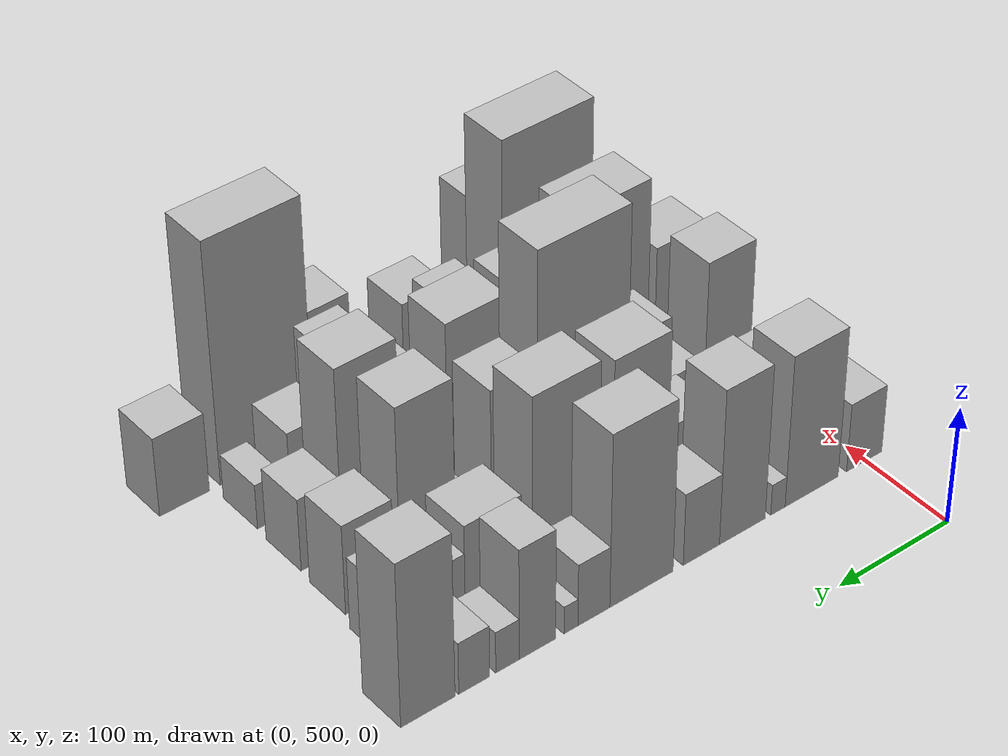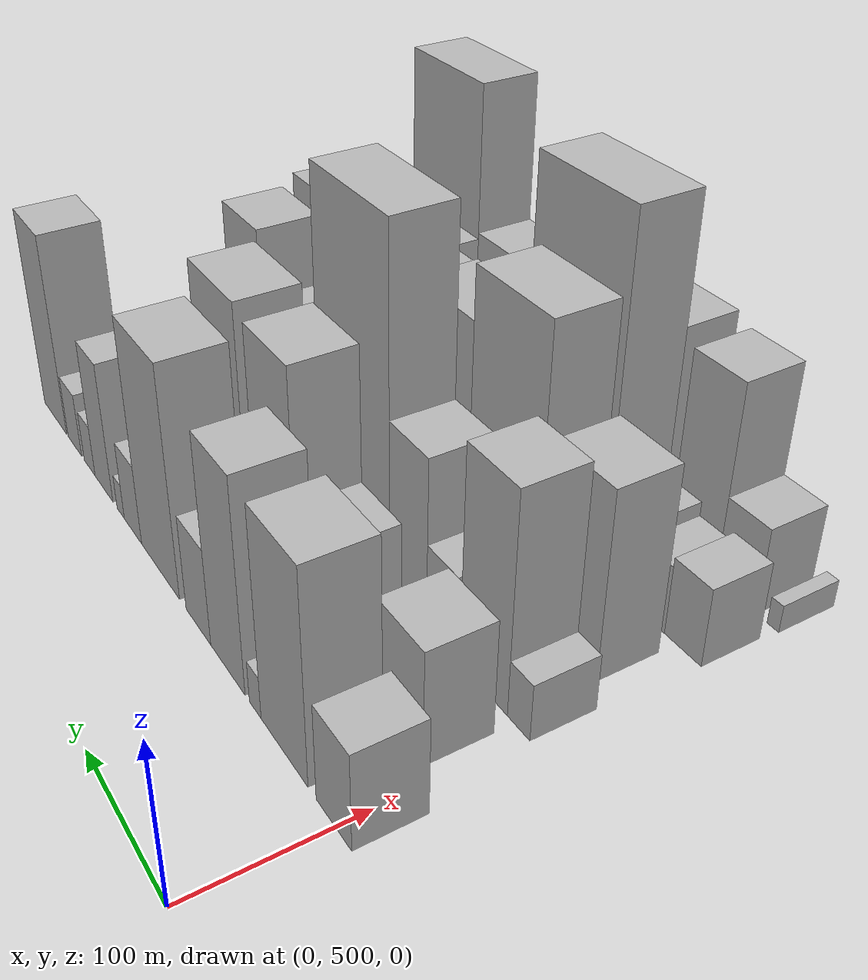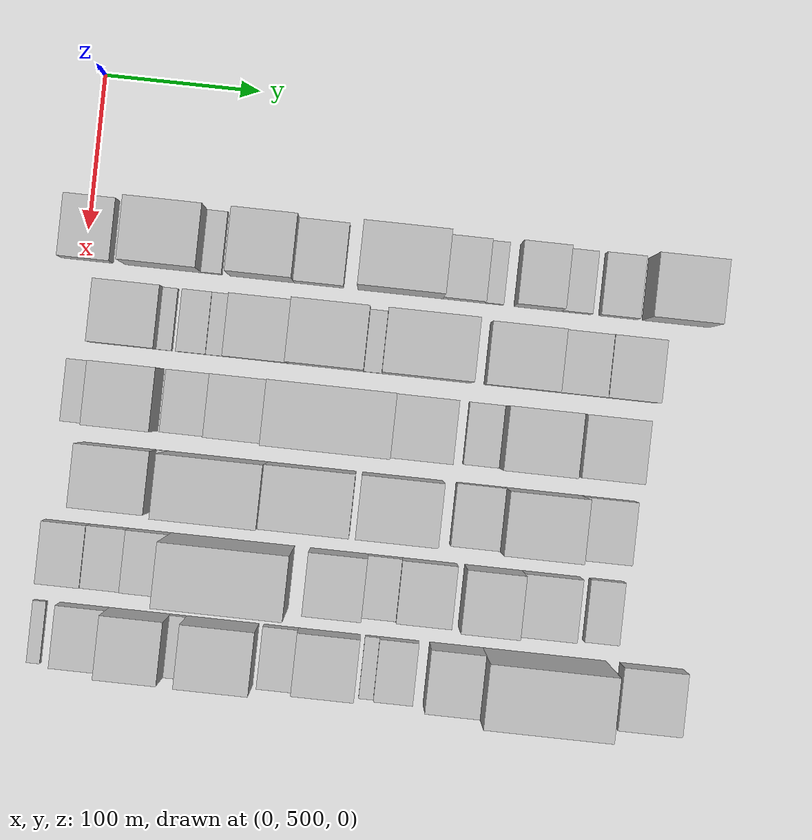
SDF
<sdf version="1.6">
 <world name="default">
  <model name="building_42">
   <static>1</static>
   <pose>100.0000 501.5508 0 0.000000 0.000000 0.000000</pose>
   <link name="link">
    <pose>0 0 30.00 0 0 0</pose>
    <collision name="collision"><geometry><box><size>40.0000 33.3344 60.0000</size></box></geometry></collision>
    <visual name="visual">
     <cast_shadows>0</cast_shadows>
     <geometry><box><size>40.0000 33.3344 60.0000</size></box></geometry>
     <material>
      <script>
       <uri>model://HANNAS_wall/materials/scripts</uri>
       <uri>model://HANNAS_wall/materials/textures</uri>
       <name>vrc/HANNAS_wall</name>
      </script>
     </material>
    </visual>
   </link>
  </model>
  <model name="building_43">
   <static>1</static>
   <pose>100.0000 550.8239 0 0.000000 0.000000 0.000000</pose>
   <link name="link">
    <pose>0 0 66.00 0 0 0</pose>
    <collision name="collision"><geometry><box><size>40.0000 49.2117 132.0000</size></box></geometry></collision>
    <visual name="visual">
     <cast_shadows>0</cast_shadows>
     <geometry><box><size>40.0000 49.2117 132.0000</size></box></geometry>
     <material>
      <script>
       <uri>model://HANNAS_wall/materials/scripts</uri>
       <uri>model://HANNAS_wall/materials/textures</uri>
       <name>vrc/HANNAS_wall</name>
      </script>
     </material>
    </visual>
   </link>
  </model>
  <model name="building_44">
   <static>1</static>
   <pose>100.0000 582.0222 0 0.000000 0.000000 0.000000</pose>
   <link name="link">
    <pose>0 0 13.50 0 0 0</pose>
    <collision name="collision"><geometry><box><size>40.0000 13.1849 27.0000</size></box></geometry></collision>
    <visual name="visual">
     <cast_shadows>0</cast_shadows>
     <geometry><box><size>40.0000 13.1849 27.0000</size></box></geometry>
     <material>
      <script>
       <uri>model://HANNAS_wall/materials/scripts</uri>
       <uri>model://HANNAS_wall/materials/textures</uri>
       <name>vrc/HANNAS_wall</name>
      </script>
     </material>
    </visual>
   </link>
  </model>
  <model name="building_45">
   <static>1</static>
   <pose>100.0000 614.3200 0 0.000000 0.000000 0.000000</pose>
   <link name="link">
    <pose>0 0 67.50 0 0 0</pose>
    <collision name="collision"><geometry><box><size>40.0000 41.4108 135.0000</size></box></geometry></collision>
    <visual name="visual">
     <cast_shadows>0</cast_shadows>
     <geometry><box><size>40.0000 41.4108 135.0000</size></box></geometry>
     <material>
      <script>
       <uri>model://HANNAS_wall/materials/scripts</uri>
       <uri>model://HANNAS_wall/materials/textures</uri>
       <name>vrc/HANNAS_wall</name>
      </script>
     </material>
    </visual>
   </link>
  </model>
  <model name="building_46">
   <static>1</static>
   <pose>100.0000 651.0902 0 0.000000 0.000000 0.000000</pose>
   <link name="link">
    <pose>0 0 31.50 0 0 0</pose>
    <collision name="collision"><geometry><box><size>40.0000 32.1295 63.0000</size></box></geometry></collision>
    <visual name="visual">
     <cast_shadows>0</cast_shadows>
     <geometry><box><size>40.0000 32.1295 63.0000</size></box></geometry>
     <material>
      <script>
       <uri>model://HANNAS_wall/materials/scripts</uri>
       <uri>model://HANNAS_wall/materials/textures</uri>
       <name>vrc/HANNAS_wall</name>
      </script>
     </material>
    </visual>
   </link>
  </model>
  <model name="building_47">
   <static>1</static>
   <pose>100.0000 703.5954 0 0.000000 0.000000 0.000000</pose>
   <link name="link">
    <pose>0 0 75.00 0 0 0</pose>
    <collision name="collision"><geometry><box><size>40.0000 54.8809 150.0000</size></box></geometry></collision>
    <visual name="visual">
     <cast_shadows>0</cast_shadows>
     <geometry><box><size>40.0000 54.8809 150.0000</size></box></geometry>
     <material>
      <script>
       <uri>model://HANNAS_wall/materials/scripts</uri>
       <uri>model://HANNAS_wall/materials/textures</uri>
       <name>vrc/HANNAS_wall</name>
      </script>
     </material>
    </visual>
   </link>
  </model>
  <model name="building_48">
   <static>1</static>
   <pose>100.0000 744.6136 0 0.000000 0.000000 0.000000</pose>
   <link name="link">
    <pose>0 0 27.00 0 0 0</pose>
    <collision name="collision"><geometry><box><size>40.0000 27.1555 54.0000</size></box></geometry></collision>
    <visual name="visual">
     <cast_shadows>0</cast_shadows>
     <geometry><box><size>40.0000 27.1555 54.0000</size></box></geometry>
     <material>
      <script>
       <uri>model://HANNAS_wall/materials/scripts</uri>
       <uri>model://HANNAS_wall/materials/textures</uri>
       <name>vrc/HANNAS_wall</name>
      </script>
     </material>
    </visual>
   </link>
  </model>
  <model name="building_49">
   <static>1</static>
   <pose>100.0000 764.0607 0 0.000000 0.000000 0.000000</pose>
   <link name="link">
    <pose>0 0 12.00 0 0 0</pose>
    <collision name="collision"><geometry><box><size>40.0000 11.7385 24.0000</size></box></geometry></collision>
    <visual name="visual">
     <cast_shadows>0</cast_shadows>
     <geometry><box><size>40.0000 11.7385 24.0000</size></box></geometry>
     <material>
      <script>
       <uri>model://HANNAS_wall/materials/scripts</uri>
       <uri>model://HANNAS_wall/materials/textures</uri>
       <name>vrc/HANNAS_wall</name>
      </script>
     </material>
    </visual>
   </link>
  </model>
  <model name="building_50">
   <static>1</static>
   <pose>100.0000 792.1015 0 0.000000 0.000000 0.000000</pose>
   <link name="link">
    <pose>0 0 48.00 0 0 0</pose>
    <collision name="collision"><geometry><box><size>40.0000 30.3432 96.0000</size></box></geometry></collision>
    <visual name="visual">
     <cast_shadows>0</cast_shadows>
     <geometry><box><size>40.0000 30.3432 96.0000</size></box></geometry>
     <material>
      <script>
       <uri>model://HANNAS_wall/materials/scripts</uri>
       <uri>model://HANNAS_wall/materials/textures</uri>
       <name>vrc/HANNAS_wall</name>
      </script>
     </material>
    </visual>
   </link>
  </model>
  <model name="building_51">
   <static>1</static>
   <pose>100.0000 816.9492 0 0.000000 0.000000 0.000000</pose>
   <link name="link">
    <pose>0 0 18.00 0 0 0</pose>
    <collision name="collision"><geometry><box><size>40.0000 19.3522 36.0000</size></box></geometry></collision>
    <visual name="visual">
     <cast_shadows>0</cast_shadows>
     <geometry><box><size>40.0000 19.3522 36.0000</size></box></geometry>
     <material>
      <script>
       <uri>model://HANNAS_wall/materials/scripts</uri>
       <uri>model://HANNAS_wall/materials/textures</uri>
       <name>vrc/HANNAS_wall</name>
      </script>
     </material>
    </visual>
   </link>
  </model>
  <model name="building_52">
   <static>1</static>
   <pose>100.0000 844.1916 0 0.000000 0.000000 0.000000</pose>
   <link name="link">
    <pose>0 0 22.50 0 0 0</pose>
    <collision name="collision"><geometry><box><size>40.0000 25.1327 45.0000</size></box></geometry></collision>
    <visual name="visual">
     <cast_shadows>0</cast_shadows>
     <geometry><box><size>40.0000 25.1327 45.0000</size></box></geometry>
     <material>
      <script>
       <uri>model://HANNAS_wall/materials/scripts</uri>
       <uri>model://HANNAS_wall/materials/textures</uri>
       <name>vrc/HANNAS_wall</name>
      </script>
     </material>
    </visual>
   </link>
  </model>
  <model name="building_53">
   <static>1</static>
   <pose>100.0000 881.5079 0 0.000000 0.000000 0.000000</pose>
   <link name="link">
    <pose>0 0 70.50 0 0 0</pose>
    <collision name="collision"><geometry><box><size>40.0000 43.4998 141.0000</size></box></geometry></collision>
    <visual name="visual">
     <cast_shadows>0</cast_shadows>
     <geometry><box><size>40.0000 43.4998 141.0000</size></box></geometry>
     <material>
      <script>
       <uri>model://HANNAS_wall/materials/scripts</uri>
       <uri>model://HANNAS_wall/materials/textures</uri>
       <name>vrc/HANNAS_wall</name>
      </script>
     </material>
    </visual>
   </link>
  </model>
  <model name="building_94">
   <static>1</static>
   <pose>152.0000 530.9502 0 0.000000 0.000000 0.000000</pose>
   <link name="link">
    <pose>0 0 36.00 0 0 0</pose>
    <collision name="collision"><geometry><box><size>40.0000 42.6453 72.0000</size></box></geometry></collision>
    <visual name="visual">
     <cast_shadows>0</cast_shadows>
     <geometry><box><size>40.0000 42.6453 72.0000</size></box></geometry>
     <material>
      <script>
       <uri>model://HANNAS_wall/materials/scripts</uri>
       <uri>model://HANNAS_wall/materials/textures</uri>
       <name>vrc/HANNAS_wall</name>
      </script>
     </material>
    </visual>
   </link>
  </model>
  <model name="building_95">
   <static>1</static>
   <pose>152.0000 557.1563 0 0.000000 0.000000 0.000000</pose>
   <link name="link">
    <pose>0 0 10.50 0 0 0</pose>
    <collision name="collision"><geometry><box><size>40.0000 9.7668 21.0000</size></box></geometry></collision>
    <visual name="visual">
     <cast_shadows>0</cast_shadows>
     <geometry><box><size>40.0000 9.7668 21.0000</size></box></geometry>
     <material>
      <script>
       <uri>model://HANNAS_wall/materials/scripts</uri>
       <uri>model://HANNAS_wall/materials/textures</uri>
       <name>vrc/HANNAS_wall</name>
      </script>
     </material>
    </visual>
   </link>
  </model>
  <model name="building_96">
   <static>1</static>
   <pose>152.0000 574.5912 0 0.000000 0.000000 0.000000</pose>
   <link name="link">
    <pose>0 0 16.50 0 0 0</pose>
    <collision name="collision"><geometry><box><size>40.0000 19.1031 33.0000</size></box></geometry></collision>
    <visual name="visual">
     <cast_shadows>0</cast_shadows>
     <geometry><box><size>40.0000 19.1031 33.0000</size></box></geometry>
     <material>
      <script>
       <uri>model://HANNAS_wall/materials/scripts</uri>
       <uri>model://HANNAS_wall/materials/textures</uri>
       <name>vrc/HANNAS_wall</name>
      </script>
     </material>
    </visual>
   </link>
  </model>
  <model name="building_97">
   <static>1</static>
   <pose>152.0000 589.9394 0 0.000000 0.000000 0.000000</pose>
   <link name="link">
    <pose>0 0 13.50 0 0 0</pose>
    <collision name="collision"><geometry><box><size>40.0000 11.5933 27.0000</size></box></geometry></collision>
    <visual name="visual">
     <cast_shadows>0</cast_shadows>
     <geometry><box><size>40.0000 11.5933 27.0000</size></box></geometry>
     <material>
      <script>
       <uri>model://HANNAS_wall/materials/scripts</uri>
       <uri>model://HANNAS_wall/materials/textures</uri>
       <name>vrc/HANNAS_wall</name>
      </script>
     </material>
    </visual>
   </link>
  </model>
  <model name="building_98">
   <static>1</static>
   <pose>152.0000 616.2266 0 0.000000 0.000000 0.000000</pose>
   <link name="link">
    <pose>0 0 34.50 0 0 0</pose>
    <collision name="collision"><geometry><box><size>40.0000 40.9809 69.0000</size></box></geometry></collision>
    <visual name="visual">
     <cast_shadows>0</cast_shadows>
     <geometry><box><size>40.0000 40.9809 69.0000</size></box></geometry>
     <material>
      <script>
       <uri>model://HANNAS_wall/materials/scripts</uri>
       <uri>model://HANNAS_wall/materials/textures</uri>
       <name>vrc/HANNAS_wall</name>
      </script>
     </material>
    </visual>
   </link>
  </model>
  <model name="building_99">
   <static>1</static>
   <pose>152.0000 661.1758 0 0.000000 0.000000 0.000000</pose>
   <link name="link">
    <pose>0 0 76.50 0 0 0</pose>
    <collision name="collision"><geometry><box><size>40.0000 48.9176 153.0000</size></box></geometry></collision>
    <visual name="visual">
     <cast_shadows>0</cast_shadows>
     <geometry><box><size>40.0000 48.9176 153.0000</size></box></geometry>
     <material>
      <script>
       <uri>model://HANNAS_wall/materials/scripts</uri>
       <uri>model://HANNAS_wall/materials/textures</uri>
       <name>vrc/HANNAS_wall</name>
      </script>
     </material>
    </visual>
   </link>
  </model>
  <model name="building_100">
   <static>1</static>
   <pose>152.0000 691.3845 0 0.000000 0.000000 0.000000</pose>
   <link name="link">
    <pose>0 0 13.50 0 0 0</pose>
    <collision name="collision"><geometry><box><size>40.0000 11.4999 27.0000</size></box></geometry></collision>
    <visual name="visual">
     <cast_shadows>0</cast_shadows>
     <geometry><box><size>40.0000 11.4999 27.0000</size></box></geometry>
     <material>
      <script>
       <uri>model://HANNAS_wall/materials/scripts</uri>
       <uri>model://HANNAS_wall/materials/textures</uri>
       <name>vrc/HANNAS_wall</name>
      </script>
     </material>
    </visual>
   </link>
  </model>
  <model name="building_101">
   <static>1</static>
   <pose>152.0000 725.6495 0 0.000000 0.000000 0.000000</pose>
   <link name="link">
    <pose>0 0 79.50 0 0 0</pose>
    <collision name="collision"><geometry><box><size>40.0000 57.0301 159.0000</size></box></geometry></collision>
    <visual name="visual">
     <cast_shadows>0</cast_shadows>
     <geometry><box><size>40.0000 57.0301 159.0000</size></box></geometry>
     <material>
      <script>
       <uri>model://HANNAS_wall/materials/scripts</uri>
       <uri>model://HANNAS_wall/materials/textures</uri>
       <name>vrc/HANNAS_wall</name>
      </script>
     </material>
    </visual>
   </link>
  </model>
  <model name="building_102">
   <static>1</static>
   <pose>152.0000 786.7947 0 0.000000 0.000000 0.000000</pose>
   <link name="link">
    <pose>0 0 40.50 0 0 0</pose>
    <collision name="collision"><geometry><box><size>40.0000 47.2603 81.0000</size></box></geometry></collision>
    <visual name="visual">
     <cast_shadows>0</cast_shadows>
     <geometry><box><size>40.0000 47.2603 81.0000</size></box></geometry>
     <material>
      <script>
       <uri>model://HANNAS_wall/materials/scripts</uri>
       <uri>model://HANNAS_wall/materials/textures</uri>
       <name>vrc/HANNAS_wall</name>
      </script>
     </material>
    </visual>
   </link>
  </model>
  <model name="building_103">
   <static>1</static>
   <pose>152.0000 825.8160 0 0.000000 0.000000 0.000000</pose>
   <link name="link">
    <pose>0 0 28.50 0 0 0</pose>
    <collision name="collision"><geometry><box><size>40.0000 30.7824 57.0000</size></box></geometry></collision>
    <visual name="visual">
     <cast_shadows>0</cast_shadows>
     <geometry><box><size>40.0000 30.7824 57.0000</size></box></geometry>
     <material>
      <script>
       <uri>model://HANNAS_wall/materials/scripts</uri>
       <uri>model://HANNAS_wall/materials/textures</uri>
       <name>vrc/HANNAS_wall</name>
      </script>
     </material>
    </visual>
   </link>
  </model>
  <model name="building_104">
   <static>1</static>
   <pose>152.0000 857.9769 0 0.000000 0.000000 0.000000</pose>
   <link name="link">
    <pose>0 0 31.50 0 0 0</pose>
    <collision name="collision"><geometry><box><size>40.0000 33.5394 63.0000</size></box></geometry></collision>
    <visual name="visual">
     <cast_shadows>0</cast_shadows>
     <geometry><box><size>40.0000 33.5394 63.0000</size></box></geometry>
     <material>
      <script>
       <uri>model://HANNAS_wall/materials/scripts</uri>
       <uri>model://HANNAS_wall/materials/textures</uri>
       <name>vrc/HANNAS_wall</name>
      </script>
     </material>
    </visual>
   </link>
  </model>
  <model name="building_148">
   <static>1</static>
   <pose>204.0000 506.1798 0 0.000000 0.000000 0.000000</pose>
   <link name="link">
    <pose>0 0 18.00 0 0 0</pose>
    <collision name="collision"><geometry><box><size>40.0000 18.8143 36.0000</size></box></geometry></collision>
    <visual name="visual">
     <cast_shadows>0</cast_shadows>
     <geometry><box><size>40.0000 18.8143 36.0000</size></box></geometry>
     <material>
      <script>
       <uri>model://HANNAS_wall/materials/scripts</uri>
       <uri>model://HANNAS_wall/materials/textures</uri>
       <name>vrc/HANNAS_wall</name>
      </script>
     </material>
    </visual>
   </link>
  </model>
  <model name="building_149">
   <static>1</static>
   <pose>204.0000 536.8570 0 0.000000 0.000000 0.000000</pose>
   <link name="link">
    <pose>0 0 69.00 0 0 0</pose>
    <collision name="collision"><geometry><box><size>40.0000 42.5401 138.0000</size></box></geometry></collision>
    <visual name="visual">
     <cast_shadows>0</cast_shadows>
     <geometry><box><size>40.0000 42.5401 138.0000</size></box></geometry>
     <material>
      <script>
       <uri>model://HANNAS_wall/materials/scripts</uri>
       <uri>model://HANNAS_wall/materials/textures</uri>
       <name>vrc/HANNAS_wall</name>
      </script>
     </material>
    </visual>
   </link>
  </model>
  <model name="building_150">
   <static>1</static>
   <pose>204.0000 575.7856 0 0.000000 0.000000 0.000000</pose>
   <link name="link">
    <pose>0 0 27.00 0 0 0</pose>
    <collision name="collision"><geometry><box><size>40.0000 29.3170 54.0000</size></box></geometry></collision>
    <visual name="visual">
     <cast_shadows>0</cast_shadows>
     <geometry><box><size>40.0000 29.3170 54.0000</size></box></geometry>
     <material>
      <script>
       <uri>model://HANNAS_wall/materials/scripts</uri>
       <uri>model://HANNAS_wall/materials/textures</uri>
       <name>vrc/HANNAS_wall</name>
      </script>
     </material>
    </visual>
   </link>
  </model>
  <model name="building_151">
   <static>1</static>
   <pose>204.0000 609.4605 0 0.000000 0.000000 0.000000</pose>
   <link name="link">
    <pose>0 0 54.00 0 0 0</pose>
    <collision name="collision"><geometry><box><size>40.0000 38.0329 108.0000</size></box></geometry></collision>
    <visual name="visual">
     <cast_shadows>0</cast_shadows>
     <geometry><box><size>40.0000 38.0329 108.0000</size></box></geometry>
     <material>
      <script>
       <uri>model://HANNAS_wall/materials/scripts</uri>
       <uri>model://HANNAS_wall/materials/textures</uri>
       <name>vrc/HANNAS_wall</name>
      </script>
     </material>
    </visual>
   </link>
  </model>
  <model name="building_152">
   <static>1</static>
   <pose>204.0000 667.9828 0 0.000000 0.000000 0.000000</pose>
   <link name="link">
    <pose>0 0 111.00 0 0 0</pose>
    <collision name="collision"><geometry><box><size>40.0000 79.0117 222.0000</size></box></geometry></collision>
    <visual name="visual">
     <cast_shadows>0</cast_shadows>
     <geometry><box><size>40.0000 79.0117 222.0000</size></box></geometry>
     <material>
      <script>
       <uri>model://HANNAS_wall/materials/scripts</uri>
       <uri>model://HANNAS_wall/materials/textures</uri>
       <name>vrc/HANNAS_wall</name>
      </script>
     </material>
    </visual>
   </link>
  </model>
  <model name="building_153">
   <static>1</static>
   <pose>204.0000 727.2190 0 0.000000 0.000000 0.000000</pose>
   <link name="link">
    <pose>0 0 63.00 0 0 0</pose>
    <collision name="collision"><geometry><box><size>40.0000 39.4608 126.0000</size></box></geometry></collision>
    <visual name="visual">
     <cast_shadows>0</cast_shadows>
     <geometry><box><size>40.0000 39.4608 126.0000</size></box></geometry>
     <material>
      <script>
       <uri>model://HANNAS_wall/materials/scripts</uri>
       <uri>model://HANNAS_wall/materials/textures</uri>
       <name>vrc/HANNAS_wall</name>
      </script>
     </material>
    </visual>
   </link>
  </model>
  <model name="building_154">
   <static>1</static>
   <pose>204.0000 766.3031 0 0.000000 0.000000 0.000000</pose>
   <link name="link">
    <pose>0 0 19.50 0 0 0</pose>
    <collision name="collision"><geometry><box><size>40.0000 22.7074 39.0000</size></box></geometry></collision>
    <visual name="visual">
     <cast_shadows>0</cast_shadows>
     <geometry><box><size>40.0000 22.7074 39.0000</size></box></geometry>
     <material>
      <script>
       <uri>model://HANNAS_wall/materials/scripts</uri>
       <uri>model://HANNAS_wall/materials/textures</uri>
       <name>vrc/HANNAS_wall</name>
      </script>
     </material>
    </visual>
   </link>
  </model>
  <model name="building_155">
   <static>1</static>
   <pose>204.0000 800.8126 0 0.000000 0.000000 0.000000</pose>
   <link name="link">
    <pose>0 0 76.50 0 0 0</pose>
    <collision name="collision"><geometry><box><size>40.0000 46.3116 153.0000</size></box></geometry></collision>
    <visual name="visual">
     <cast_shadows>0</cast_shadows>
     <geometry><box><size>40.0000 46.3116 153.0000</size></box></geometry>
     <material>
      <script>
       <uri>model://HANNAS_wall/materials/scripts</uri>
       <uri>model://HANNAS_wall/materials/textures</uri>
       <name>vrc/HANNAS_wall</name>
      </script>
     </material>
    </visual>
   </link>
  </model>
  <model name="building_156">
   <static>1</static>
   <pose>204.0000 849.0978 0 0.000000 0.000000 0.000000</pose>
   <link name="link">
    <pose>0 0 39.00 0 0 0</pose>
    <collision name="collision"><geometry><box><size>40.0000 40.2588 78.0000</size></box></geometry></collision>
    <visual name="visual">
     <cast_shadows>0</cast_shadows>
     <geometry><box><size>40.0000 40.2588 78.0000</size></box></geometry>
     <material>
      <script>
       <uri>model://HANNAS_wall/materials/scripts</uri>
       <uri>model://HANNAS_wall/materials/textures</uri>
       <name>vrc/HANNAS_wall</name>
      </script>
     </material>
    </visual>
   </link>
  </model>
  <model name="building_200">
   <static>1</static>
   <pose>256.0000 535.4774 0 0.000000 0.000000 0.000000</pose>
   <link name="link">
    <pose>0 0 60.00 0 0 0</pose>
    <collision name="collision"><geometry><box><size>40.0000 47.3640 120.0000</size></box></geometry></collision>
    <visual name="visual">
     <cast_shadows>0</cast_shadows>
     <geometry><box><size>40.0000 47.3640 120.0000</size></box></geometry>
     <material>
      <script>
       <uri>model://HANNAS_wall/materials/scripts</uri>
       <uri>model://HANNAS_wall/materials/textures</uri>
       <name>vrc/HANNAS_wall</name>
      </script>
     </material>
    </visual>
   </link>
  </model>
  <model name="building_201">
   <static>1</static>
   <pose>256.0000 562.5292 0 0.000000 0.000000 0.000000</pose>
   <link name="link">
    <pose>0 0 7.50 0 0 0</pose>
    <collision name="collision"><geometry><box><size>40.0000 6.7397 15.0000</size></box></geometry></collision>
    <visual name="visual">
     <cast_shadows>0</cast_shadows>
     <geometry><box><size>40.0000 6.7397 15.0000</size></box></geometry>
     <material>
      <script>
       <uri>model://HANNAS_wall/materials/scripts</uri>
       <uri>model://HANNAS_wall/materials/textures</uri>
       <name>vrc/HANNAS_wall</name>
      </script>
     </material>
    </visual>
   </link>
  </model>
  <model name="building_202">
   <static>1</static>
   <pose>256.0000 598.5136 0 0.000000 0.000000 0.000000</pose>
   <link name="link">
    <pose>0 0 91.50 0 0 0</pose>
    <collision name="collision"><geometry><box><size>40.0000 65.2290 183.0000</size></box></geometry></collision>
    <visual name="visual">
     <cast_shadows>0</cast_shadows>
     <geometry><box><size>40.0000 65.2290 183.0000</size></box></geometry>
     <material>
      <script>
       <uri>model://HANNAS_wall/materials/scripts</uri>
       <uri>model://HANNAS_wall/materials/textures</uri>
       <name>vrc/HANNAS_wall</name>
      </script>
     </material>
    </visual>
   </link>
  </model>
  <model name="building_203">
   <static>1</static>
   <pose>256.0000 659.4033 0 0.000000 0.000000 0.000000</pose>
   <link name="link">
    <pose>0 0 75.00 0 0 0</pose>
    <collision name="collision"><geometry><box><size>40.0000 56.5505 150.0000</size></box></geometry></collision>
    <visual name="visual">
     <cast_shadows>0</cast_shadows>
     <geometry><box><size>40.0000 56.5505 150.0000</size></box></geometry>
     <material>
      <script>
       <uri>model://HANNAS_wall/materials/scripts</uri>
       <uri>model://HANNAS_wall/materials/textures</uri>
       <name>vrc/HANNAS_wall</name>
      </script>
     </material>
    </visual>
   </link>
  </model>
  <model name="building_204">
   <static>1</static>
   <pose>256.0000 717.4096 0 0.000000 0.000000 0.000000</pose>
   <link name="link">
    <pose>0 0 73.50 0 0 0</pose>
    <collision name="collision"><geometry><box><size>40.0000 51.4620 147.0000</size></box></geometry></collision>
    <visual name="visual">
     <cast_shadows>0</cast_shadows>
     <geometry><box><size>40.0000 51.4620 147.0000</size></box></geometry>
     <material>
      <script>
       <uri>model://HANNAS_wall/materials/scripts</uri>
       <uri>model://HANNAS_wall/materials/textures</uri>
       <name>vrc/HANNAS_wall</name>
      </script>
     </material>
    </visual>
   </link>
  </model>
  <model name="building_205">
   <static>1</static>
   <pose>256.0000 767.7776 0 0.000000 0.000000 0.000000</pose>
   <link name="link">
    <pose>0 0 30.00 0 0 0</pose>
    <collision name="collision"><geometry><box><size>40.0000 31.2741 60.0000</size></box></geometry></collision>
    <visual name="visual">
     <cast_shadows>0</cast_shadows>
     <geometry><box><size>40.0000 31.2741 60.0000</size></box></geometry>
     <material>
      <script>
       <uri>model://HANNAS_wall/materials/scripts</uri>
       <uri>model://HANNAS_wall/materials/textures</uri>
       <name>vrc/HANNAS_wall</name>
      </script>
     </material>
    </visual>
   </link>
  </model>
  <model name="building_206">
   <static>1</static>
   <pose>256.0000 808.2724 0 0.000000 0.000000 0.000000</pose>
   <link name="link">
    <pose>0 0 78.00 0 0 0</pose>
    <collision name="collision"><geometry><box><size>40.0000 49.7154 156.0000</size></box></geometry></collision>
    <visual name="visual">
     <cast_shadows>0</cast_shadows>
     <geometry><box><size>40.0000 49.7154 156.0000</size></box></geometry>
     <material>
      <script>
       <uri>model://HANNAS_wall/materials/scripts</uri>
       <uri>model://HANNAS_wall/materials/textures</uri>
       <name>vrc/HANNAS_wall</name>
      </script>
     </material>
    </visual>
   </link>
  </model>
  <model name="building_207">
   <static>1</static>
   <pose>256.0000 850.2251 0 0.000000 0.000000 0.000000</pose>
   <link name="link">
    <pose>0 0 31.50 0 0 0</pose>
    <collision name="collision"><geometry><box><size>40.0000 34.1899 63.0000</size></box></geometry></collision>
    <visual name="visual">
     <cast_shadows>0</cast_shadows>
     <geometry><box><size>40.0000 34.1899 63.0000</size></box></geometry>
     <material>
      <script>
       <uri>model://HANNAS_wall/materials/scripts</uri>
       <uri>model://HANNAS_wall/materials/textures</uri>
       <name>vrc/HANNAS_wall</name>
      </script>
     </material>
    </visual>
   </link>
  </model>
  <model name="building_249">
   <static>1</static>
   <pose>308.0000 506.9541 0 0.000000 0.000000 0.000000</pose>
   <link name="link">
    <pose>0 0 25.50 0 0 0</pose>
    <collision name="collision"><geometry><box><size>40.0000 28.5028 51.0000</size></box></geometry></collision>
    <visual name="visual">
     <cast_shadows>0</cast_shadows>
     <geometry><box><size>40.0000 28.5028 51.0000</size></box></geometry>
     <material>
      <script>
       <uri>model://HANNAS_wall/materials/scripts</uri>
       <uri>model://HANNAS_wall/materials/textures</uri>
       <name>vrc/HANNAS_wall</name>
      </script>
     </material>
    </visual>
   </link>
  </model>
  <model name="building_250">
   <static>1</static>
   <pose>308.0000 533.8815 0 0.000000 0.000000 0.000000</pose>
   <link name="link">
    <pose>0 0 22.50 0 0 0</pose>
    <collision name="collision"><geometry><box><size>40.0000 25.3519 45.0000</size></box></geometry></collision>
    <visual name="visual">
     <cast_shadows>0</cast_shadows>
     <geometry><box><size>40.0000 25.3519 45.0000</size></box></geometry>
     <material>
      <script>
       <uri>model://HANNAS_wall/materials/scripts</uri>
       <uri>model://HANNAS_wall/materials/textures</uri>
       <name>vrc/HANNAS_wall</name>
      </script>
     </material>
    </visual>
   </link>
  </model>
  <model name="building_251">
   <static>1</static>
   <pose>308.0000 560.2369 0 0.000000 0.000000 0.000000</pose>
   <link name="link">
    <pose>0 0 27.00 0 0 0</pose>
    <collision name="collision"><geometry><box><size>40.0000 27.3587 54.0000</size></box></geometry></collision>
    <visual name="visual">
     <cast_shadows>0</cast_shadows>
     <geometry><box><size>40.0000 27.3587 54.0000</size></box></geometry>
     <material>
      <script>
       <uri>model://HANNAS_wall/materials/scripts</uri>
       <uri>model://HANNAS_wall/materials/textures</uri>
       <name>vrc/HANNAS_wall</name>
      </script>
     </material>
    </visual>
   </link>
  </model>
  <model name="building_252">
   <static>1</static>
   <pose>308.0000 613.7526 0 0.000000 0.000000 0.000000</pose>
   <link name="link">
    <pose>0 0 112.50 0 0 0</pose>
    <collision name="collision"><geometry><box><size>40.0000 79.6727 225.0000</size></box></geometry></collision>
    <visual name="visual">
     <cast_shadows>0</cast_shadows>
     <geometry><box><size>40.0000 79.6727 225.0000</size></box></geometry>
     <material>
      <script>
       <uri>model://HANNAS_wall/materials/scripts</uri>
       <uri>model://HANNAS_wall/materials/textures</uri>
       <name>vrc/HANNAS_wall</name>
      </script>
     </material>
    </visual>
   </link>
  </model>
  <model name="building_253">
   <static>1</static>
   <pose>308.0000 682.1928 0 0.000000 0.000000 0.000000</pose>
   <link name="link">
    <pose>0 0 54.00 0 0 0</pose>
    <collision name="collision"><geometry><box><size>40.0000 37.2078 108.0000</size></box></geometry></collision>
    <visual name="visual">
     <cast_shadows>0</cast_shadows>
     <geometry><box><size>40.0000 37.2078 108.0000</size></box></geometry>
     <material>
      <script>
       <uri>model://HANNAS_wall/materials/scripts</uri>
       <uri>model://HANNAS_wall/materials/textures</uri>
       <name>vrc/HANNAS_wall</name>
      </script>
     </material>
    </visual>
   </link>
  </model>
  <model name="building_254">
   <static>1</static>
   <pose>308.0000 711.8739 0 0.000000 0.000000 0.000000</pose>
   <link name="link">
    <pose>0 0 19.50 0 0 0</pose>
    <collision name="collision"><geometry><box><size>40.0000 22.1544 39.0000</size></box></geometry></collision>
    <visual name="visual">
     <cast_shadows>0</cast_shadows>
     <geometry><box><size>40.0000 22.1544 39.0000</size></box></geometry>
     <material>
      <script>
       <uri>model://HANNAS_wall/materials/scripts</uri>
       <uri>model://HANNAS_wall/materials/textures</uri>
       <name>vrc/HANNAS_wall</name>
      </script>
     </material>
    </visual>
   </link>
  </model>
  <model name="building_255">
   <static>1</static>
   <pose>308.0000 740.5995 0 0.000000 0.000000 0.000000</pose>
   <link name="link">
    <pose>0 0 34.50 0 0 0</pose>
    <collision name="collision"><geometry><box><size>40.0000 35.2968 69.0000</size></box></geometry></collision>
    <visual name="visual">
     <cast_shadows>0</cast_shadows>
     <geometry><box><size>40.0000 35.2968 69.0000</size></box></geometry>
     <material>
      <script>
       <uri>model://HANNAS_wall/materials/scripts</uri>
       <uri>model://HANNAS_wall/materials/textures</uri>
       <name>vrc/HANNAS_wall</name>
      </script>
     </material>
    </visual>
   </link>
  </model>
  <model name="building_256">
   <static>1</static>
   <pose>308.0000 781.7914 0 0.000000 0.000000 0.000000</pose>
   <link name="link">
    <pose>0 0 58.50 0 0 0</pose>
    <collision name="collision"><geometry><box><size>40.0000 37.0870 117.0000</size></box></geometry></collision>
    <visual name="visual">
     <cast_shadows>0</cast_shadows>
     <geometry><box><size>40.0000 37.0870 117.0000</size></box></geometry>
     <material>
      <script>
       <uri>model://HANNAS_wall/materials/scripts</uri>
       <uri>model://HANNAS_wall/materials/textures</uri>
       <name>vrc/HANNAS_wall</name>
      </script>
     </material>
    </visual>
   </link>
  </model>
  <model name="building_257">
   <static>1</static>
   <pose>308.0000 818.9716 0 0.000000 0.000000 0.000000</pose>
   <link name="link">
    <pose>0 0 34.50 0 0 0</pose>
    <collision name="collision"><geometry><box><size>40.0000 37.2736 69.0000</size></box></geometry></collision>
    <visual name="visual">
     <cast_shadows>0</cast_shadows>
     <geometry><box><size>40.0000 37.2736 69.0000</size></box></geometry>
     <material>
      <script>
       <uri>model://HANNAS_wall/materials/scripts</uri>
       <uri>model://HANNAS_wall/materials/textures</uri>
       <name>vrc/HANNAS_wall</name>
      </script>
     </material>
    </visual>
   </link>
  </model>
  <model name="building_258">
   <static>1</static>
   <pose>308.0000 854.7370 0 0.000000 0.000000 0.000000</pose>
   <link name="link">
    <pose>0 0 19.50 0 0 0</pose>
    <collision name="collision"><geometry><box><size>40.0000 22.2572 39.0000</size></box></geometry></collision>
    <visual name="visual">
     <cast_shadows>0</cast_shadows>
     <geometry><box><size>40.0000 22.2572 39.0000</size></box></geometry>
     <material>
      <script>
       <uri>model://HANNAS_wall/materials/scripts</uri>
       <uri>model://HANNAS_wall/materials/textures</uri>
       <name>vrc/HANNAS_wall</name>
      </script>
     </material>
    </visual>
   </link>
  </model>
  <model name="building_301">
   <static>1</static>
   <pose>360.0000 495.2624 0 0.000000 0.000000 0.000000</pose>
   <link name="link">
    <pose>0 0 9.00 0 0 0</pose>
    <collision name="collision"><geometry><box><size>40.0000 8.6602 18.0000</size></box></geometry></collision>
    <visual name="visual">
     <cast_shadows>0</cast_shadows>
     <geometry><box><size>40.0000 8.6602 18.0000</size></box></geometry>
     <material>
      <script>
       <uri>model://HANNAS_wall/materials/scripts</uri>
       <uri>model://HANNAS_wall/materials/textures</uri>
       <name>vrc/HANNAS_wall</name>
      </script>
     </material>
    </visual>
   </link>
  </model>
  <model name="building_302">
   <static>1</static>
   <pose>360.0000 523.5187 0 0.000000 0.000000 0.000000</pose>
   <link name="link">
    <pose>0 0 28.50 0 0 0</pose>
    <collision name="collision"><geometry><box><size>40.0000 31.8523 57.0000</size></box></geometry></collision>
    <visual name="visual">
     <cast_shadows>0</cast_shadows>
     <geometry><box><size>40.0000 31.8523 57.0000</size></box></geometry>
     <material>
      <script>
       <uri>model://HANNAS_wall/materials/scripts</uri>
       <uri>model://HANNAS_wall/materials/textures</uri>
       <name>vrc/HANNAS_wall</name>
      </script>
     </material>
    </visual>
   </link>
  </model>
  <model name="building_303">
   <static>1</static>
   <pose>360.0000 559.2292 0 0.000000 0.000000 0.000000</pose>
   <link name="link">
    <pose>0 0 64.50 0 0 0</pose>
    <collision name="collision"><geometry><box><size>40.0000 39.5685 129.0000</size></box></geometry></collision>
    <visual name="visual">
     <cast_shadows>0</cast_shadows>
     <geometry><box><size>40.0000 39.5685 129.0000</size></box></geometry>
     <material>
      <script>
       <uri>model://HANNAS_wall/materials/scripts</uri>
       <uri>model://HANNAS_wall/materials/textures</uri>
       <name>vrc/HANNAS_wall</name>
      </script>
     </material>
    </visual>
   </link>
  </model>
  <model name="building_304">
   <static>1</static>
   <pose>360.0000 584.3298 0 0.000000 0.000000 0.000000</pose>
   <link name="link">
    <pose>0 0 12.00 0 0 0</pose>
    <collision name="collision"><geometry><box><size>40.0000 10.6327 24.0000</size></box></geometry></collision>
    <visual name="visual">
     <cast_shadows>0</cast_shadows>
     <geometry><box><size>40.0000 10.6327 24.0000</size></box></geometry>
     <material>
      <script>
       <uri>model://HANNAS_wall/materials/scripts</uri>
       <uri>model://HANNAS_wall/materials/textures</uri>
       <name>vrc/HANNAS_wall</name>
      </script>
     </material>
    </visual>
   </link>
  </model>
  <model name="building_305">
   <static>1</static>
   <pose>360.0000 612.9229 0 0.000000 0.000000 0.000000</pose>
   <link name="link">
    <pose>0 0 67.50 0 0 0</pose>
    <collision name="collision"><geometry><box><size>40.0000 46.5535 135.0000</size></box></geometry></collision>
    <visual name="visual">
     <cast_shadows>0</cast_shadows>
     <geometry><box><size>40.0000 46.5535 135.0000</size></box></geometry>
     <material>
      <script>
       <uri>model://HANNAS_wall/materials/scripts</uri>
       <uri>model://HANNAS_wall/materials/textures</uri>
       <name>vrc/HANNAS_wall</name>
      </script>
     </material>
    </visual>
   </link>
  </model>
  <model name="building_306">
   <static>1</static>
   <pose>360.0000 650.4732 0 0.000000 0.000000 0.000000</pose>
   <link name="link">
    <pose>0 0 19.50 0 0 0</pose>
    <collision name="collision"><geometry><box><size>40.0000 22.5471 39.0000</size></box></geometry></collision>
    <visual name="visual">
     <cast_shadows>0</cast_shadows>
     <geometry><box><size>40.0000 22.5471 39.0000</size></box></geometry>
     <material>
      <script>
       <uri>model://HANNAS_wall/materials/scripts</uri>
       <uri>model://HANNAS_wall/materials/textures</uri>
       <name>vrc/HANNAS_wall</name>
      </script>
     </material>
    </visual>
   </link>
  </model>
  <model name="building_307">
   <static>1</static>
   <pose>360.0000 681.6998 0 0.000000 0.000000 0.000000</pose>
   <link name="link">
    <pose>0 0 39.00 0 0 0</pose>
    <collision name="collision"><geometry><box><size>40.0000 39.9060 78.0000</size></box></geometry></collision>
    <visual name="visual">
     <cast_shadows>0</cast_shadows>
     <geometry><box><size>40.0000 39.9060 78.0000</size></box></geometry>
     <material>
      <script>
       <uri>model://HANNAS_wall/materials/scripts</uri>
       <uri>model://HANNAS_wall/materials/textures</uri>
       <name>vrc/HANNAS_wall</name>
      </script>
     </material>
    </visual>
   </link>
  </model>
  <model name="building_308">
   <static>1</static>
   <pose>360.0000 709.3783 0 0.000000 0.000000 0.000000</pose>
   <link name="link">
    <pose>0 0 10.50 0 0 0</pose>
    <collision name="collision"><geometry><box><size>40.0000 9.4511 21.0000</size></box></geometry></collision>
    <visual name="visual">
     <cast_shadows>0</cast_shadows>
     <geometry><box><size>40.0000 9.4511 21.0000</size></box></geometry>
     <material>
      <script>
       <uri>model://HANNAS_wall/materials/scripts</uri>
       <uri>model://HANNAS_wall/materials/textures</uri>
       <name>vrc/HANNAS_wall</name>
      </script>
     </material>
    </visual>
   </link>
  </model>
  <model name="building_309">
   <static>1</static>
   <pose>360.0000 726.6614 0 0.000000 0.000000 0.000000</pose>
   <link name="link">
    <pose>0 0 21.00 0 0 0</pose>
    <collision name="collision"><geometry><box><size>40.0000 25.1151 42.0000</size></box></geometry></collision>
    <visual name="visual">
     <cast_shadows>0</cast_shadows>
     <geometry><box><size>40.0000 25.1151 42.0000</size></box></geometry>
     <material>
      <script>
       <uri>model://HANNAS_wall/materials/scripts</uri>
       <uri>model://HANNAS_wall/materials/textures</uri>
       <name>vrc/HANNAS_wall</name>
      </script>
     </material>
    </visual>
   </link>
  </model>
  <model name="building_310">
   <static>1</static>
   <pose>360.0000 763.4748 0 0.000000 0.000000 0.000000</pose>
   <link name="link">
    <pose>0 0 55.50 0 0 0</pose>
    <collision name="collision"><geometry><box><size>40.0000 34.5116 111.0000</size></box></geometry></collision>
    <visual name="visual">
     <cast_shadows>0</cast_shadows>
     <geometry><box><size>40.0000 34.5116 111.0000</size></box></geometry>
     <material>
      <script>
       <uri>model://HANNAS_wall/materials/scripts</uri>
       <uri>model://HANNAS_wall/materials/textures</uri>
       <name>vrc/HANNAS_wall</name>
      </script>
     </material>
    </visual>
   </link>
  </model>
  <model name="building_311">
   <static>1</static>
   <pose>360.0000 820.3506 0 0.000000 0.000000 0.000000</pose>
   <link name="link">
    <pose>0 0 105.00 0 0 0</pose>
    <collision name="collision"><geometry><box><size>40.0000 79.2399 210.0000</size></box></geometry></collision>
    <visual name="visual">
     <cast_shadows>0</cast_shadows>
     <geometry><box><size>40.0000 79.2399 210.0000</size></box></geometry>
     <material>
      <script>
       <uri>model://HANNAS_wall/materials/scripts</uri>
       <uri>model://HANNAS_wall/materials/textures</uri>
       <name>vrc/HANNAS_wall</name>
      </script>
     </material>
    </visual>
   </link>
  </model>
  <model name="building_312">
   <static>1</static>
   <pose>360.0000 889.4808 0 0.000000 0.000000 0.000000</pose>
   <link name="link">
    <pose>0 0 34.50 0 0 0</pose>
    <collision name="collision"><geometry><box><size>40.0000 41.0205 69.0000</size></box></geometry></collision>
    <visual name="visual">
     <cast_shadows>0</cast_shadows>
     <geometry><box><size>40.0000 41.0205 69.0000</size></box></geometry>
     <material>
      <script>
       <uri>model://HANNAS_wall/materials/scripts</uri>
       <uri>model://HANNAS_wall/materials/textures</uri>
       <name>vrc/HANNAS_wall</name>
      </script>
     </material>
    </visual>
   </link>
  </model>
 </world>
</sdf>
